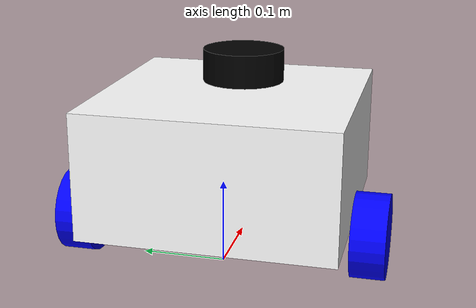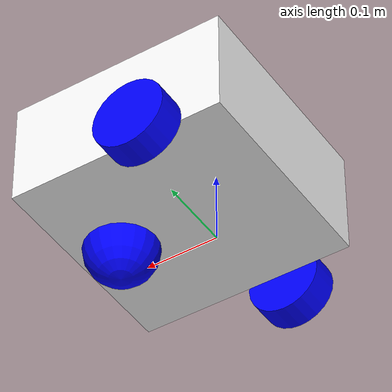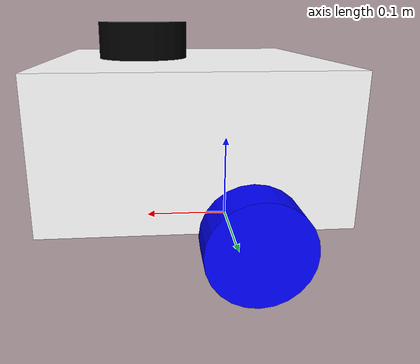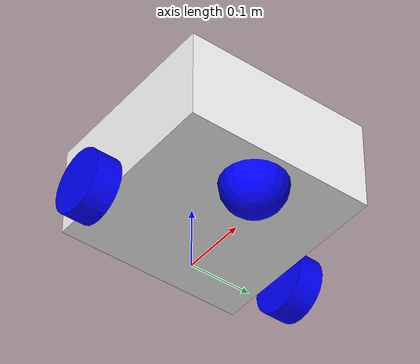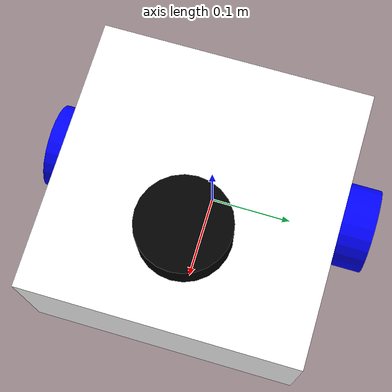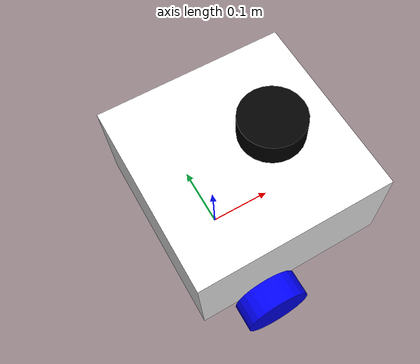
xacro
<?xml version="1.0" encoding="UTF-8"?>
<robot xmlns:xacro="http://www.ros.org/wiki/xacro" name="my_amr">

    <xacro:include filename="inertial_macros.xacro" />
    <xacro:include filename="gazebo_control.xacro"/>
    <xacro:include filename="lidar.xacro"/>
    <material name="white">
        <color rgba="1 1 1 1" />
    </material>

    <material name="blue">
        <color rgba="0 0 1 1"/>
    </material>

    <link name="base_link">
    </link>

    <link name="chassis">
        <visual>
            <origin xyz="0.15 0 0.075" rpy="0 0 0" />
            <geometry>
                <box size="0.3 0.3 0.15" />
            </geometry>
            <material name="white"/>
        </visual>
        <collision>
            <origin xyz="0.15 0 0.075" rpy="0 0 0" />
            <geometry>
                <box size="0.3 0.3 0.15" />
            </geometry>
        </collision>
        <xacro:inertial_box mass="0.5" x="0.3" y="0.3" z="0.15">
            <origin xyz="0.15 0 0.075" rpy="0 0 0" />
        </xacro:inertial_box>
    </link>

    <joint name="chassis_joint" type="fixed">
        <parent link="base_link" />
        <child link="chassis" />
        <origin xyz="-0.1 0 0.05" rpy="0 0 0" />
    </joint>

    <link name="left_wheel">
        <visual>
            <geometry>
                <cylinder radius="0.05" length="0.04" />
            </geometry>
            <material name="blue"/>
        </visual>
        <collision>
            <geometry>
                <cylinder radius="0.05" length="0.04" />
            </geometry>
        </collision>
        <xacro:inertial_cylinder mass="0.1" length="0.04" radius="0.05">
            <origin xyz="0 0 0" rpy="0 0 0" />
        </xacro:inertial_cylinder>
    </link>

    <joint name="left_wheel_joint" type="continuous">
        <parent link="base_link"/>
        <child link="left_wheel"/>
        <origin xyz="0 0.175 0.05" rpy="-${pi/2} 0 0"/>
        <axis xyz="0 0 1"/>
    </joint>

    <link name="right_wheel">
        <visual>
            <geometry>
                <cylinder radius="0.05" length="0.04" />
            </geometry>
            <material name="blue"/>
        </visual>
        <collision>
            <geometry>
                <cylinder radius="0.05" length="0.04" />
            </geometry>
        </collision>
        <xacro:inertial_cylinder mass="0.1" length="0.04" radius="0.05">
            <origin xyz="0 0 0" rpy="0 0 0"/>
        </xacro:inertial_cylinder>
    </link>

    <joint name="right_wheel_joint" type="continuous">
        <parent link="base_link"/>
        <child link="right_wheel"/>
        <origin xyz="0 -0.175 0.05" rpy="${pi/2} 0 0"/>
        <axis xyz="0 0 -1"/>
    </joint>

    <link name="castor_wheel">
        <visual>
            <geometry>
                <sphere radius="0.05" />
            </geometry>
            <material name="blue"/>
        </visual>
        <collision>
            <geometry>
                <sphere radius="0.05" />
            </geometry>
        </collision>
        <xacro:inertial_sphere mass="0.1" radius="0.05">
            <origin xyz="0 0 0" rpy="0 0 0"/>
        </xacro:inertial_sphere>
    </link>

    <joint name="castor_wheel_joint" type="fixed">
        <parent link="chassis"/>
        <child link="castor_wheel"/>
        <origin xyz="0.24 0 0" rpy="0 0 0"/>
    </joint>

    <gazebo reference="castor_wheel">
        <mu1 value="0.001"/>
        <mu2 value="0.001"/>
    </gazebo>

    <link name="imu_link"> </link>
    <joint name="imu_joint" type="fixed">
        <parent link="base_link"/>
        <child link="imu_link"/>
        <origin xyz="0 0 0" rpy="0 0 0"/>
    </joint>

</robot>

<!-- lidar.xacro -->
<robot xmlns:xacro="http://www.ros.org/wiki/xacro" >

    <joint name="laser_joint" type="fixed">
        <parent link="base_link"/>
        <child link="laser_frame"/>
        <origin xyz="0.1 0 0.22" rpy="0 0 0"/>
    </joint>

    <link name="laser_frame">
        <visual>
            <geometry>
                <cylinder radius="0.05" length="0.04"/>
            </geometry>
            <material name="black">
                <color rgba="0 0 0 1"/>
            </material>
        </visual>
        <collision>
            <geometry>
                <cylinder radius="0.05" length="0.04"/>
            </geometry>
        </collision>
        <inertial>
            <mass value="0.1"/>
            <inertia ixx="0.0001" ixy="0" ixz="0" iyy="0.0001" iyz="0" izz="0.0001"/>
        </inertial>
    </link>

    <gazebo reference="laser_frame">
        <sensor name="laser" type="gpu_lidar">
            <pose>0 0 0 0 0 0</pose>
            <always_on>true</always_on>
            <visualize>true</visualize> <update_rate>10</update_rate>
            <topic>scan</topic>
            <gz_frame_id>laser_frame</gz_frame_id>
            <lidar>
                <scan>
                    <horizontal>
                        <samples>360</samples>
                        <resolution>1.0</resolution>
                        <min_angle>-3.14</min_angle>
                        <max_angle>3.14</max_angle>
                    </horizontal>
                </scan>
                <range>
                    <min>0.15</min>
                    <max>12.0</max>
                    <resolution>0.015</resolution> #this means the least movement we can measure, like if an object moves 0.010 m we cna find it, if it moves 0.015 m we cn afind it
                </range>
                <noise>
                    <type>gaussian</type>
                    <mean>0.0</mean>#bias or error
                    <stddev>0.01</stddev>
                </noise>
            </lidar>
        </sensor>
    </gazebo>

</robot>
